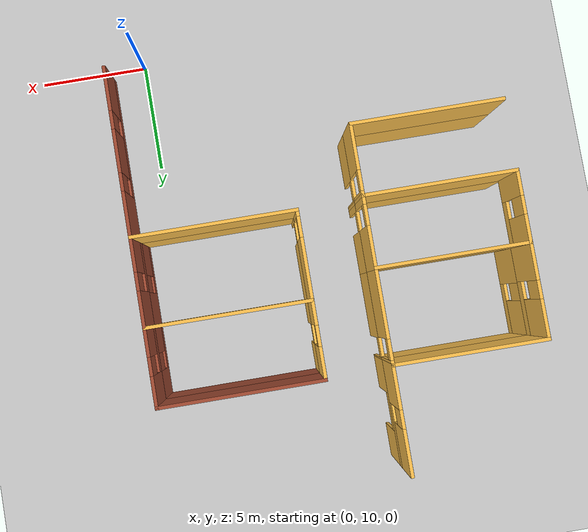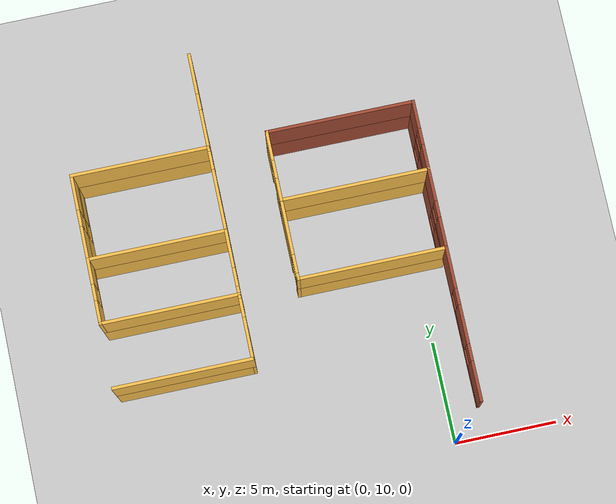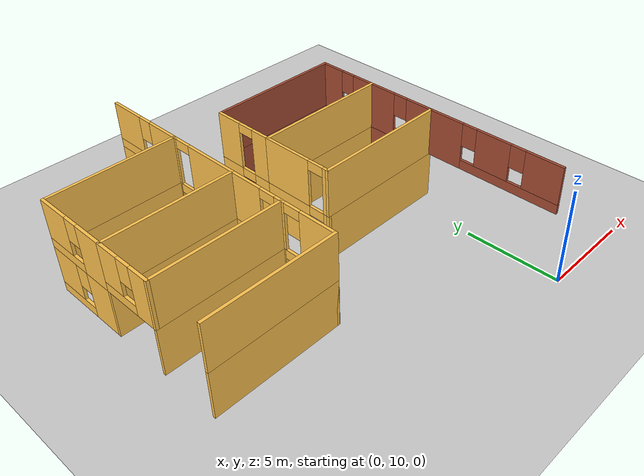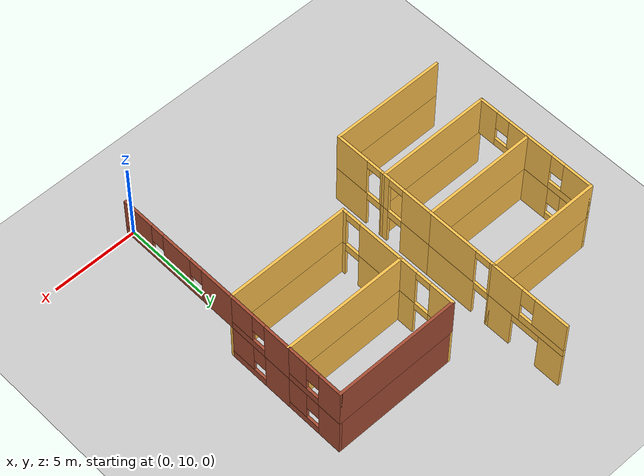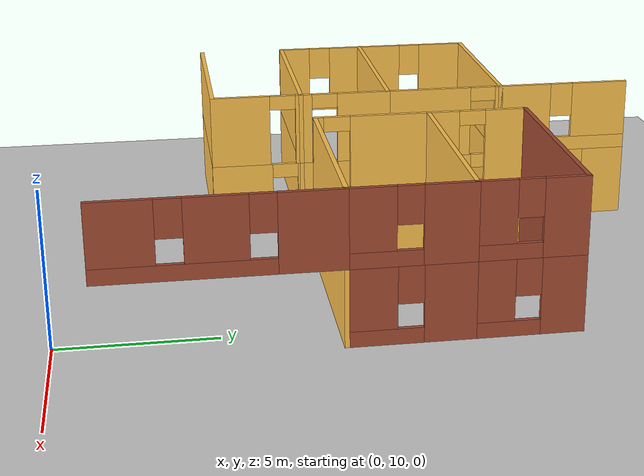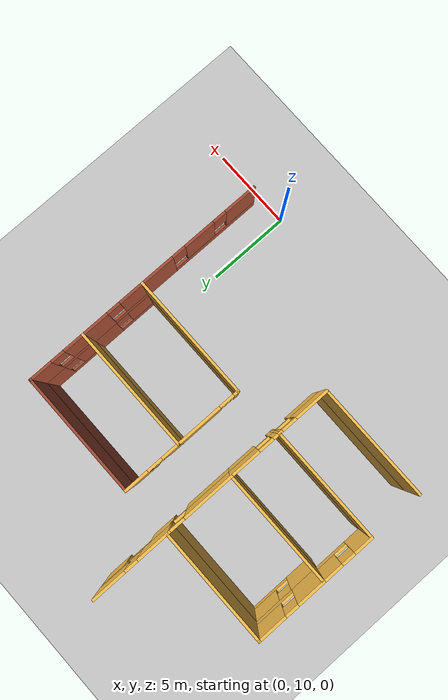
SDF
<sdf version="1.7">
 <world name="default">
  <model name="ground_plane">
   <static>1</static>
   <link name="link">
    <collision name="collision">
     <geometry><plane><normal>0 0 1</normal><size>100 100</size></plane></geometry>
     <surface>
      <contact><collide_bitmask>65535</collide_bitmask></contact>
      <friction><ode><mu>100</mu><mu2>50</mu2></ode></friction>
     </surface>
    </collision>
    <visual name="visual">
     <cast_shadows>0</cast_shadows>
     <geometry><plane><normal>0 0 1</normal><size>100 100</size></plane></geometry>
     <material>
      <script><uri>file://media/materials/scripts/gazebo.material</uri><name>Gazebo/Grey</name></script>
     </material>
    </visual>
   </link>
  </model>
  <model name="DepartmentBuilding">
   <pose>-25.6559 18.8293 0 0 -0 0</pose>
   <link name="Wall_188">
    <collision name="Wall_188_Collision">
     <geometry><box><size>7.25 0.15 2.5</size></box></geometry>
     <pose>0 0 1.25 0 -0 0</pose>
    </collision>
    <visual name="Wall_188_Visual">
     <pose>0 0 1.25 0 -0 0</pose>
     <geometry><box><size>7.25 0.15 2.5</size></box></geometry>
     <material>
      <script><uri>file://media/materials/scripts/gazebo.material</uri><name>Gazebo/Grey</name></script>
      <ambient>1 0.764706 0.305882 1</ambient>
     </material>
     <meta><layer>0</layer></meta>
    </visual>
    <pose>23.3194 -0.169637 0 0 -0 0</pose>
   </link>
   <link name="Wall_197">
    <collision name="Wall_197_Collision">
     <geometry><box><size>6.75 0.15 2.5</size></box></geometry>
     <pose>0 0 1.25 0 -0 0</pose>
    </collision>
    <visual name="Wall_197_Visual">
     <pose>0 0 1.25 0 -0 0</pose>
     <geometry><box><size>6.75 0.15 2.5</size></box></geometry>
     <material>
      <script><uri>file://media/materials/scripts/gazebo.material</uri><name>Gazebo/Grey</name></script>
      <ambient>1 0.764706 0.305882 1</ambient>
     </material>
     <meta><layer>0</layer></meta>
    </visual>
    <pose>13.6194 -3.41094 0 0 -0 0</pose>
   </link>
   <link name="Wall_200">
    <pose>16.9194 -1.86094 0 0 -0 1.5708</pose>
    <visual name="Wall_200_Visual_0">
     <pose>-0.559126 0 1.25 0 -0 0</pose>
     <geometry><box><size>2.13175 0.15 2.5</size></box></geometry>
     <material>
      <script><uri>file://media/materials/scripts/gazebo.material</uri><name>Gazebo/Grey</name></script>
      <ambient>1 0.764706 0.305882 1</ambient>
     </material>
     <meta><layer>0</layer></meta>
    </visual>
    <collision name="Wall_200_Collision_0">
     <geometry><box><size>2.13175 0.15 2.5</size></box></geometry>
     <pose>-0.559126 0 1.25 0 -0 0</pose>
    </collision>
    <visual name="Wall_200_Visual_1">
     <pose>1.51587 0 1.25 0 -0 0</pose>
     <geometry><box><size>0.218251 0.15 2.5</size></box></geometry>
     <material>
      <script><uri>file://media/materials/scripts/gazebo.material</uri><name>Gazebo/Grey</name></script>
      <ambient>1 0.764706 0.305882 1</ambient>
     </material>
     <meta><layer>0</layer></meta>
    </visual>
    <collision name="Wall_200_Collision_1">
     <geometry><box><size>0.218251 0.15 2.5</size></box></geometry>
     <pose>1.51587 0 1.25 0 -0 0</pose>
    </collision>
    <visual name="Wall_200_Visual_2">
     <pose>0.956749 0 2.25 0 -0 0</pose>
     <geometry><box><size>0.9 0.15 0.5</size></box></geometry>
     <material>
      <script><uri>file://media/materials/scripts/gazebo.material</uri><name>Gazebo/Grey</name></script>
      <ambient>1 0.764706 0.305882 1</ambient>
     </material>
     <meta><layer>0</layer></meta>
    </visual>
    <collision name="Wall_200_Collision_2">
     <geometry><box><size>0.9 0.15 0.5</size></box></geometry>
     <pose>0.956749 0 2.25 0 -0 0</pose>
    </collision>
   </link>
   <link name="Wall_201">
    <collision name="Wall_201_Collision">
     <geometry><box><size>6.75 0.15 2.5</size></box></geometry>
     <pose>0 0 1.25 0 -0 0</pose>
    </collision>
    <visual name="Wall_201_Visual">
     <pose>0 0 1.25 0 -0 0</pose>
     <geometry><box><size>6.75 0.15 2.5</size></box></geometry>
     <material>
      <script><uri>file://media/materials/scripts/gazebo.material</uri><name>Gazebo/Grey</name></script>
      <ambient>1 0.764706 0.305882 1</ambient>
     </material>
     <meta><layer>0</layer></meta>
    </visual>
    <pose>13.6194 -0.310941 0 0 -0 3.14159</pose>
   </link>
   <link name="Wall_205">
    <collision name="Wall_205_Collision">
     <geometry><box><size>6.75 0.15 2.5</size></box></geometry>
     <pose>0 0 1.25 0 -0 0</pose>
    </collision>
    <visual name="Wall_205_Visual">
     <pose>0 0 1.25 0 -0 0</pose>
     <geometry><box><size>6.75 0.15 2.5</size></box></geometry>
     <material>
      <script><uri>file://media/materials/scripts/gazebo.material</uri><name>Gazebo/Grey</name></script>
      <ambient>1 0.764706 0.305882 1</ambient>
     </material>
     <meta><layer>0</layer></meta>
    </visual>
    <pose>13.6194 2.78906 0 0 -0 0</pose>
   </link>
   <link name="Wall_206">
    <pose>16.9194 1.23906 0 0 -0 -1.5708</pose>
    <visual name="Wall_206_Visual_0">
     <pose>-0.68297 0 1.25 0 -0 0</pose>
     <geometry><box><size>1.88406 0.15 2.5</size></box></geometry>
     <material>
      <script><uri>file://media/materials/scripts/gazebo.material</uri><name>Gazebo/Grey</name></script>
      <ambient>1 0.764706 0.305882 1</ambient>
     </material>
     <meta><layer>0</layer></meta>
    </visual>
    <collision name="Wall_206_Collision_0">
     <geometry><box><size>1.88406 0.15 2.5</size></box></geometry>
     <pose>-0.68297 0 1.25 0 -0 0</pose>
    </collision>
    <visual name="Wall_206_Visual_1">
     <pose>1.39203 0 1.25 0 -0 0</pose>
     <geometry><box><size>0.46594 0.15 2.5</size></box></geometry>
     <material>
      <script><uri>file://media/materials/scripts/gazebo.material</uri><name>Gazebo/Grey</name></script>
      <ambient>1 0.764706 0.305882 1</ambient>
     </material>
     <meta><layer>0</layer></meta>
    </visual>
    <collision name="Wall_206_Collision_1">
     <geometry><box><size>0.46594 0.15 2.5</size></box></geometry>
     <pose>1.39203 0 1.25 0 -0 0</pose>
    </collision>
    <visual name="Wall_206_Visual_2">
     <pose>0.70906 0 2.25 0 -0 0</pose>
     <geometry><box><size>0.9 0.15 0.5</size></box></geometry>
     <material>
      <script><uri>file://media/materials/scripts/gazebo.material</uri><name>Gazebo/Grey</name></script>
      <ambient>1 0.764706 0.305882 1</ambient>
     </material>
     <meta><layer>0</layer></meta>
    </visual>
    <collision name="Wall_206_Collision_2">
     <geometry><box><size>0.9 0.15 0.5</size></box></geometry>
     <pose>0.70906 0 2.25 0 -0 0</pose>
    </collision>
   </link>
   <link name="Wall_208">
    <pose>10.3194 4.83906 0 0 -0 1.5708</pose>
    <visual name="Wall_208_Visual_0">
     <pose>-1.26015 0 1.25 0 -0 0</pose>
     <geometry><box><size>1.72969 0.15 2.5</size></box></geometry>
     <material>
      <script><uri>file://media/materials/scripts/gazebo.material</uri><name>Gazebo/Grey</name></script>
      <ambient>1 0.764706 0.305882 1</ambient>
     </material>
     <meta><layer>0</layer></meta>
    </visual>
    <collision name="Wall_208_Collision_0">
     <geometry><box><size>1.72969 0.15 2.5</size></box></geometry>
     <pose>-1.26015 0 1.25 0 -0 0</pose>
    </collision>
    <visual name="Wall_208_Visual_1">
     <pose>0.864847 0 0.25 0 -0 0</pose>
     <geometry><box><size>2.52031 0.15 0.5</size></box></geometry>
     <material>
      <script><uri>file://media/materials/scripts/gazebo.material</uri><name>Gazebo/Grey</name></script>
      <ambient>1 0.764706 0.305882 1</ambient>
     </material>
     <meta><layer>0</layer></meta>
    </visual>
    <collision name="Wall_208_Collision_1">
     <geometry><box><size>2.52031 0.15 0.5</size></box></geometry>
     <pose>0.864847 0 0.25 0 -0 0</pose>
    </collision>
    <visual name="Wall_208_Visual_2">
     <pose>1.26485 0 1.5 0 -0 0</pose>
     <geometry><box><size>1.72031 0.15 2</size></box></geometry>
     <material>
      <script><uri>file://media/materials/scripts/gazebo.material</uri><name>Gazebo/Grey</name></script>
      <ambient>1 0.764706 0.305882 1</ambient>
     </material>
     <meta><layer>0</layer></meta>
    </visual>
    <collision name="Wall_208_Collision_2">
     <geometry><box><size>1.72031 0.15 2</size></box></geometry>
     <pose>1.26485 0 1.5 0 -0 0</pose>
    </collision>
    <visual name="Wall_208_Visual_3">
     <pose>0.004694 0 1.9 0 -0 0</pose>
     <geometry><box><size>0.8 0.15 1.2</size></box></geometry>
     <material>
      <script><uri>file://media/materials/scripts/gazebo.material</uri><name>Gazebo/Grey</name></script>
      <ambient>1 0.764706 0.305882 1</ambient>
     </material>
     <meta><layer>0</layer></meta>
    </visual>
    <collision name="Wall_208_Collision_3">
     <geometry><box><size>0.8 0.15 1.2</size></box></geometry>
     <pose>0.004694 0 1.9 0 -0 0</pose>
    </collision>
   </link>
   <link name="Wall_209">
    <collision name="Wall_209_Collision">
     <geometry><box><size>6.75 0.15 2.5</size></box></geometry>
     <pose>0 0 1.25 0 -0 0</pose>
    </collision>
    <visual name="Wall_209_Visual">
     <pose>0 0 1.25 0 -0 0</pose>
     <geometry><box><size>6.75 0.15 2.5</size></box></geometry>
     <material>
      <script><uri>file://media/materials/scripts/gazebo.material</uri><name>Gazebo/Grey</name></script>
      <ambient>1 0.764706 0.305882 1</ambient>
     </material>
     <meta><layer>0</layer></meta>
    </visual>
    <pose>13.6194 6.88906 0 0 -0 0</pose>
   </link>
   <link name="Wall_210">
    <pose>16.9194 4.83906 0 0 -0 -1.5708</pose>
    <visual name="Wall_210_Visual_0">
     <pose>-2.01632 0 1.25 0 -0 0</pose>
     <geometry><box><size>0.217356 0.15 2.5</size></box></geometry>
     <material>
      <script><uri>file://media/materials/scripts/gazebo.material</uri><name>Gazebo/Grey</name></script>
      <ambient>1 0.764706 0.305882 1</ambient>
     </material>
     <meta><layer>0</layer></meta>
    </visual>
    <collision name="Wall_210_Collision_0">
     <geometry><box><size>0.217356 0.15 2.5</size></box></geometry>
     <pose>-2.01632 0 1.25 0 -0 0</pose>
    </collision>
    <visual name="Wall_210_Visual_1">
     <pose>0.558678 0 1.25 0 -0 0</pose>
     <geometry><box><size>3.13264 0.15 2.5</size></box></geometry>
     <material>
      <script><uri>file://media/materials/scripts/gazebo.material</uri><name>Gazebo/Grey</name></script>
      <ambient>1 0.764706 0.305882 1</ambient>
     </material>
     <meta><layer>0</layer></meta>
    </visual>
    <collision name="Wall_210_Collision_1">
     <geometry><box><size>3.13264 0.15 2.5</size></box></geometry>
     <pose>0.558678 0 1.25 0 -0 0</pose>
    </collision>
    <visual name="Wall_210_Visual_2">
     <pose>-1.45764 0 2.25 0 -0 0</pose>
     <geometry><box><size>0.9 0.15 0.5</size></box></geometry>
     <material>
      <script><uri>file://media/materials/scripts/gazebo.material</uri><name>Gazebo/Grey</name></script>
      <ambient>1 0.764706 0.305882 1</ambient>
     </material>
     <meta><layer>0</layer></meta>
    </visual>
    <collision name="Wall_210_Collision_2">
     <geometry><box><size>0.9 0.15 0.5</size></box></geometry>
     <pose>-1.45764 0 2.25 0 -0 0</pose>
    </collision>
   </link>
   <link name="Wall_212">
    <pose>19.7694 1.75536 0 0 -0 1.5708</pose>
    <visual name="Wall_212_Visual_0">
     <pose>-1.82685 0 1.25 0 -0 0</pose>
     <geometry><box><size>0.346307 0.15 2.5</size></box></geometry>
     <material>
      <script><uri>file://media/materials/scripts/gazebo.material</uri><name>Gazebo/Grey</name></script>
      <ambient>1 0.764706 0.305882 1</ambient>
     </material>
     <meta><layer>0</layer></meta>
    </visual>
    <collision name="Wall_212_Collision_0">
     <geometry><box><size>0.346307 0.15 2.5</size></box></geometry>
     <pose>-1.82685 0 1.25 0 -0 0</pose>
    </collision>
    <visual name="Wall_212_Visual_1">
     <pose>0.623153 0 1.25 0 -0 0</pose>
     <geometry><box><size>2.75369 0.15 2.5</size></box></geometry>
     <material>
      <script><uri>file://media/materials/scripts/gazebo.material</uri><name>Gazebo/Grey</name></script>
      <ambient>1 0.764706 0.305882 1</ambient>
     </material>
     <meta><layer>0</layer></meta>
    </visual>
    <collision name="Wall_212_Collision_1">
     <geometry><box><size>2.75369 0.15 2.5</size></box></geometry>
     <pose>0.623153 0 1.25 0 -0 0</pose>
    </collision>
    <visual name="Wall_212_Visual_2">
     <pose>-1.20369 0 2.25 0 -0 0</pose>
     <geometry><box><size>0.9 0.15 0.5</size></box></geometry>
     <material>
      <script><uri>file://media/materials/scripts/gazebo.material</uri><name>Gazebo/Grey</name></script>
      <ambient>1 0.764706 0.305882 1</ambient>
     </material>
     <meta><layer>0</layer></meta>
    </visual>
    <collision name="Wall_212_Collision_2">
     <geometry><box><size>0.9 0.15 0.5</size></box></geometry>
     <pose>-1.20369 0 2.25 0 -0 0</pose>
    </collision>
   </link>
   <link name="Wall_213">
    <collision name="Wall_213_Collision">
     <geometry><box><size>7.25 0.15 2.5</size></box></geometry>
     <pose>0 0 1.25 0 -0 0</pose>
    </collision>
    <visual name="Wall_213_Visual">
     <pose>0 0 1.25 0 -0 0</pose>
     <geometry><box><size>7.25 0.15 2.5</size></box></geometry>
     <material>
      <script><uri>file://media/materials/scripts/gazebo.material</uri><name>Gazebo/Grey</name></script>
      <ambient>1 0.764706 0.305882 1</ambient>
     </material>
     <meta><layer>0</layer></meta>
    </visual>
    <pose>23.3194 3.68036 0 0 -0 0</pose>
   </link>
   <link name="Wall_214">
    <pose>26.8694 1.75536 0 0 -0 -1.5708</pose>
    <visual name="Wall_214_Visual_0">
     <pose>-1.19764 0 1.25 0 -0 0</pose>
     <geometry><box><size>1.60472 0.15 2.5</size></box></geometry>
     <material>
      <script><uri>file://media/materials/scripts/gazebo.material</uri><name>Gazebo/Bricks</name></script>
      <ambient>1 1 1 1</ambient>
     </material>
     <meta><layer>0</layer></meta>
    </visual>
    <collision name="Wall_214_Collision_0">
     <geometry><box><size>1.60472 0.15 2.5</size></box></geometry>
     <pose>-1.19764 0 1.25 0 -0 0</pose>
    </collision>
    <visual name="Wall_214_Visual_1">
     <pose>0.802362 0 0.25 0 -0 0</pose>
     <geometry><box><size>2.39527 0.15 0.5</size></box></geometry>
     <material>
      <script><uri>file://media/materials/scripts/gazebo.material</uri><name>Gazebo/Bricks</name></script>
      <ambient>1 1 1 1</ambient>
     </material>
     <meta><layer>0</layer></meta>
    </visual>
    <collision name="Wall_214_Collision_1">
     <geometry><box><size>2.39527 0.15 0.5</size></box></geometry>
     <pose>0.802362 0 0.25 0 -0 0</pose>
    </collision>
    <visual name="Wall_214_Visual_2">
     <pose>1.20236 0 1.5 0 -0 0</pose>
     <geometry><box><size>1.59527 0.15 2</size></box></geometry>
     <material>
      <script><uri>file://media/materials/scripts/gazebo.material</uri><name>Gazebo/Bricks</name></script>
      <ambient>1 1 1 1</ambient>
     </material>
     <meta><layer>0</layer></meta>
    </visual>
    <collision name="Wall_214_Collision_2">
     <geometry><box><size>1.59527 0.15 2</size></box></geometry>
     <pose>1.20236 0 1.5 0 -0 0</pose>
    </collision>
    <visual name="Wall_214_Visual_3">
     <pose>0.004725 0 1.9 0 -0 0</pose>
     <geometry><box><size>0.8 0.15 1.2</size></box></geometry>
     <material>
      <script><uri>file://media/materials/scripts/gazebo.material</uri><name>Gazebo/Bricks</name></script>
      <ambient>1 1 1 1</ambient>
     </material>
     <meta><layer>0</layer></meta>
    </visual>
    <collision name="Wall_214_Collision_3">
     <geometry><box><size>0.8 0.15 1.2</size></box></geometry>
     <pose>0.004725 0 1.9 0 -0 0</pose>
    </collision>
   </link>
   <link name="Wall_216">
    <pose>19.7694 5.35536 0 0 -0 1.5708</pose>
    <visual name="Wall_216_Visual_0">
     <pose>-1.18709 0 1.25 0 -0 0</pose>
     <geometry><box><size>1.12581 0.15 2.5</size></box></geometry>
     <material>
      <script><uri>file://media/materials/scripts/gazebo.material</uri><name>Gazebo/Grey</name></script>
      <ambient>1 0.764706 0.305882 1</ambient>
     </material>
     <meta><layer>0</layer></meta>
    </visual>
    <collision name="Wall_216_Collision_0">
     <geometry><box><size>1.12581 0.15 2.5</size></box></geometry>
     <pose>-1.18709 0 1.25 0 -0 0</pose>
    </collision>
    <visual name="Wall_216_Visual_1">
     <pose>1.01291 0 1.25 0 -0 0</pose>
     <geometry><box><size>1.47419 0.15 2.5</size></box></geometry>
     <material>
      <script><uri>file://media/materials/scripts/gazebo.material</uri><name>Gazebo/Grey</name></script>
      <ambient>1 0.764706 0.305882 1</ambient>
     </material>
     <meta><layer>0</layer></meta>
    </visual>
    <collision name="Wall_216_Collision_1">
     <geometry><box><size>1.47419 0.15 2.5</size></box></geometry>
     <pose>1.01291 0 1.25 0 -0 0</pose>
    </collision>
    <visual name="Wall_216_Visual_2">
     <pose>-0.174188 0 2.25 0 -0 0</pose>
     <geometry><box><size>0.9 0.15 0.5</size></box></geometry>
     <material>
      <script><uri>file://media/materials/scripts/gazebo.material</uri><name>Gazebo/Grey</name></script>
      <ambient>1 0.764706 0.305882 1</ambient>
     </material>
     <meta><layer>0</layer></meta>
    </visual>
    <collision name="Wall_216_Collision_2">
     <geometry><box><size>0.9 0.15 0.5</size></box></geometry>
     <pose>-0.174188 0 2.25 0 -0 0</pose>
    </collision>
   </link>
   <link name="Wall_217">
    <collision name="Wall_217_Collision">
     <geometry><box><size>7.25 0.15 2.5</size></box></geometry>
     <pose>0 0 1.25 0 -0 0</pose>
    </collision>
    <visual name="Wall_217_Visual">
     <pose>0 0 1.25 0 -0 0</pose>
     <geometry><box><size>7.25 0.15 2.5</size></box></geometry>
     <material>
      <script><uri>file://media/materials/scripts/gazebo.material</uri><name>Gazebo/Bricks</name></script>
      <ambient>1 1 1 1</ambient>
     </material>
     <meta><layer>0</layer></meta>
    </visual>
    <pose>23.3194 7.03036 0 0 -0 0</pose>
   </link>
   <link name="Wall_218">
    <pose>26.8694 5.35536 0 0 -0 -1.5708</pose>
    <visual name="Wall_218_Visual_0">
     <pose>-1.0556 0 1.25 0 -0 0</pose>
     <geometry><box><size>1.38881 0.15 2.5</size></box></geometry>
     <material>
      <script><uri>file://media/materials/scripts/gazebo.material</uri><name>Gazebo/Bricks</name></script>
      <ambient>1 1 1 1</ambient>
     </material>
     <meta><layer>0</layer></meta>
    </visual>
    <collision name="Wall_218_Collision_0">
     <geometry><box><size>1.38881 0.15 2.5</size></box></geometry>
     <pose>-1.0556 0 1.25 0 -0 0</pose>
    </collision>
    <visual name="Wall_218_Visual_1">
     <pose>0.694403 0 0.25 0 -0 0</pose>
     <geometry><box><size>2.11119 0.15 0.5</size></box></geometry>
     <material>
      <script><uri>file://media/materials/scripts/gazebo.material</uri><name>Gazebo/Bricks</name></script>
      <ambient>1 1 1 1</ambient>
     </material>
     <meta><layer>0</layer></meta>
    </visual>
    <collision name="Wall_218_Collision_1">
     <geometry><box><size>2.11119 0.15 0.5</size></box></geometry>
     <pose>0.694403 0 0.25 0 -0 0</pose>
    </collision>
    <visual name="Wall_218_Visual_2">
     <pose>1.0944 0 1.5 0 -0 0</pose>
     <geometry><box><size>1.31119 0.15 2</size></box></geometry>
     <material>
      <script><uri>file://media/materials/scripts/gazebo.material</uri><name>Gazebo/Bricks</name></script>
      <ambient>1 1 1 1</ambient>
     </material>
     <meta><layer>0</layer></meta>
    </visual>
    <collision name="Wall_218_Collision_2">
     <geometry><box><size>1.31119 0.15 2</size></box></geometry>
     <pose>1.0944 0 1.5 0 -0 0</pose>
    </collision>
    <visual name="Wall_218_Visual_3">
     <pose>0.038806 0 1.9 0 -0 0</pose>
     <geometry><box><size>0.8 0.15 1.2</size></box></geometry>
     <material>
      <script><uri>file://media/materials/scripts/gazebo.material</uri><name>Gazebo/Bricks</name></script>
      <ambient>1 1 1 1</ambient>
     </material>
     <meta><layer>0</layer></meta>
    </visual>
    <collision name="Wall_218_Collision_3">
     <geometry><box><size>0.8 0.15 1.2</size></box></geometry>
     <pose>0.038806 0 1.9 0 -0 0</pose>
    </collision>
   </link>
   <link name="Wall_220">
    <pose>16.9194 9.18906 0 0 -0 1.5708</pose>
    <visual name="Wall_220_Visual_0">
     <pose>-1.61576 0 1.25 0 -0 0</pose>
     <geometry><box><size>1.51849 0.15 2.5</size></box></geometry>
     <material>
      <script><uri>file://media/materials/scripts/gazebo.material</uri><name>Gazebo/Grey</name></script>
      <ambient>1 0.764706 0.305882 1</ambient>
     </material>
     <meta><layer>0</layer></meta>
    </visual>
    <collision name="Wall_220_Collision_0">
     <geometry><box><size>1.51849 0.15 2.5</size></box></geometry>
     <pose>-1.61576 0 1.25 0 -0 0</pose>
    </collision>
    <visual name="Wall_220_Visual_1">
     <pose>1.60924 0 1.25 0 -0 0</pose>
     <geometry><box><size>1.53151 0.15 2.5</size></box></geometry>
     <material>
      <script><uri>file://media/materials/scripts/gazebo.material</uri><name>Gazebo/Grey</name></script>
      <ambient>1 0.764706 0.305882 1</ambient>
     </material>
     <meta><layer>0</layer></meta>
    </visual>
    <collision name="Wall_220_Collision_1">
     <geometry><box><size>1.53151 0.15 2.5</size></box></geometry>
     <pose>1.60924 0 1.25 0 -0 0</pose>
    </collision>
    <visual name="Wall_220_Visual_2">
     <pose>-0.006513 0 2.25 0 -0 0</pose>
     <geometry><box><size>1.7 0.15 0.5</size></box></geometry>
     <material>
      <script><uri>file://media/materials/scripts/gazebo.material</uri><name>Gazebo/Grey</name></script>
      <ambient>1 0.764706 0.305882 1</ambient>
     </material>
     <meta><layer>0</layer></meta>
    </visual>
    <collision name="Wall_220_Collision_2">
     <geometry><box><size>1.7 0.15 0.5</size></box></geometry>
     <pose>-0.006513 0 2.25 0 -0 0</pose>
    </collision>
   </link>
   <link name="Wall_878">
    <collision name="Wall_878_Collision">
     <geometry><box><size>7.25 0.15 2.5</size></box></geometry>
     <pose>0 0 1.25 0 -0 0</pose>
    </collision>
    <visual name="Wall_878_Visual">
     <pose>0 0 1.25 0 -0 0</pose>
     <geometry><box><size>7.25 0.15 2.5</size></box></geometry>
     <material>
      <script><uri>file://media/materials/scripts/gazebo.material</uri><name>Gazebo/Grey</name></script>
      <ambient>1 0.764706 0.305882 1</ambient>
     </material>
     <meta><layer>1</layer></meta>
    </visual>
    <pose>23.3194 -0.169637 2.5 0 -0 0</pose>
   </link>
   <link name="Wall_879">
    <pose>26.8694 -3.84464 2.5 0 -0 -1.5708</pose>
    <visual name="Wall_879_Visual_0">
     <pose>-2.72406 0 1.25 0 -0 0</pose>
     <geometry><box><size>2.05188 0.15 2.5</size></box></geometry>
     <material>
      <script><uri>file://media/materials/scripts/gazebo.material</uri><name>Gazebo/Bricks</name></script>
      <ambient>1 1 1 1</ambient>
     </material>
     <meta><layer>1</layer></meta>
    </visual>
    <collision name="Wall_879_Collision_0">
     <geometry><box><size>2.05188 0.15 2.5</size></box></geometry>
     <pose>-2.72406 0 1.25 0 -0 0</pose>
    </collision>
    <visual name="Wall_879_Visual_1">
     <pose>1.02594 0 0.25 0 -0 0</pose>
     <geometry><box><size>5.44812 0.15 0.5</size></box></geometry>
     <material>
      <script><uri>file://media/materials/scripts/gazebo.material</uri><name>Gazebo/Bricks</name></script>
      <ambient>1 1 1 1</ambient>
     </material>
     <meta><layer>1</layer></meta>
    </visual>
    <collision name="Wall_879_Collision_1">
     <geometry><box><size>5.44812 0.15 0.5</size></box></geometry>
     <pose>1.02594 0 0.25 0 -0 0</pose>
    </collision>
    <visual name="Wall_879_Visual_2">
     <pose>0.045189 0 1.5 0 -0 0</pose>
     <geometry><box><size>1.88662 0.15 2</size></box></geometry>
     <material>
      <script><uri>file://media/materials/scripts/gazebo.material</uri><name>Gazebo/Bricks</name></script>
      <ambient>1 1 1 1</ambient>
     </material>
     <meta><layer>1</layer></meta>
    </visual>
    <collision name="Wall_879_Collision_2">
     <geometry><box><size>1.88662 0.15 2</size></box></geometry>
     <pose>0.045189 0 1.5 0 -0 0</pose>
    </collision>
    <visual name="Wall_879_Visual_3">
     <pose>2.76925 0 1.5 0 -0 0</pose>
     <geometry><box><size>1.9615 0.15 2</size></box></geometry>
     <material>
      <script><uri>file://media/materials/scripts/gazebo.material</uri><name>Gazebo/Bricks</name></script>
      <ambient>1 1 1 1</ambient>
     </material>
     <meta><layer>1</layer></meta>
    </visual>
    <collision name="Wall_879_Collision_3">
     <geometry><box><size>1.9615 0.15 2</size></box></geometry>
     <pose>2.76925 0 1.5 0 -0 0</pose>
    </collision>
    <visual name="Wall_879_Visual_4">
     <pose>-1.29812 0 1.9 0 -0 0</pose>
     <geometry><box><size>0.8 0.15 1.2</size></box></geometry>
     <material>
      <script><uri>file://media/materials/scripts/gazebo.material</uri><name>Gazebo/Bricks</name></script>
      <ambient>1 1 1 1</ambient>
     </material>
     <meta><layer>1</layer></meta>
    </visual>
    <collision name="Wall_879_Collision_4">
     <geometry><box><size>0.8 0.15 1.2</size></box></geometry>
     <pose>-1.29812 0 1.9 0 -0 0</pose>
    </collision>
    <visual name="Wall_879_Visual_5">
     <pose>1.3885 0 1.9 0 -0 0</pose>
     <geometry><box><size>0.8 0.15 1.2</size></box></geometry>
     <material>
      <script><uri>file://media/materials/scripts/gazebo.material</uri><name>Gazebo/Bricks</name></script>
      <ambient>1 1 1 1</ambient>
     </material>
     <meta><layer>1</layer></meta>
    </visual>
    <collision name="Wall_879_Collision_5">
     <geometry><box><size>0.8 0.15 1.2</size></box></geometry>
     <pose>1.3885 0 1.9 0 -0 0</pose>
    </collision>
   </link>
   <link name="Wall_884">
    <collision name="Wall_884_Collision">
     <geometry><box><size>6.75 0.15 2.5</size></box></geometry>
     <pose>0 0 1.25 0 -0 0</pose>
    </collision>
    <visual name="Wall_884_Visual">
     <pose>0 0 1.25 0 -0 0</pose>
     <geometry><box><size>6.75 0.15 2.5</size></box></geometry>
     <material>
      <script><uri>file://media/materials/scripts/gazebo.material</uri><name>Gazebo/Grey</name></script>
      <ambient>1 0.764706 0.305882 1</ambient>
     </material>
     <meta><layer>1</layer></meta>
    </visual>
    <pose>13.6194 -3.41094 2.5 0 -0 0</pose>
   </link>
   <link name="Wall_886">
    <pose>16.9194 -1.86094 2.5 0 -0 1.5708</pose>
    <visual name="Wall_886_Visual_0">
     <pose>-0.587944 0 1.25 0 -0 0</pose>
     <geometry><box><size>2.07411 0.15 2.5</size></box></geometry>
     <material>
      <script><uri>file://media/materials/scripts/gazebo.material</uri><name>Gazebo/Grey</name></script>
      <ambient>1 0.764706 0.305882 1</ambient>
     </material>
     <meta><layer>1</layer></meta>
    </visual>
    <collision name="Wall_886_Collision_0">
     <geometry><box><size>2.07411 0.15 2.5</size></box></geometry>
     <pose>-0.587944 0 1.25 0 -0 0</pose>
    </collision>
    <visual name="Wall_886_Visual_1">
     <pose>1.48706 0 1.25 0 -0 0</pose>
     <geometry><box><size>0.275887 0.15 2.5</size></box></geometry>
     <material>
      <script><uri>file://media/materials/scripts/gazebo.material</uri><name>Gazebo/Grey</name></script>
      <ambient>1 0.764706 0.305882 1</ambient>
     </material>
     <meta><layer>1</layer></meta>
    </visual>
    <collision name="Wall_886_Collision_1">
     <geometry><box><size>0.275887 0.15 2.5</size></box></geometry>
     <pose>1.48706 0 1.25 0 -0 0</pose>
    </collision>
    <visual name="Wall_886_Visual_2">
     <pose>0.899113 0 2.25 0 -0 0</pose>
     <geometry><box><size>0.9 0.15 0.5</size></box></geometry>
     <material>
      <script><uri>file://media/materials/scripts/gazebo.material</uri><name>Gazebo/Grey</name></script>
      <ambient>1 0.764706 0.305882 1</ambient>
     </material>
     <meta><layer>1</layer></meta>
    </visual>
    <collision name="Wall_886_Collision_2">
     <geometry><box><size>0.9 0.15 0.5</size></box></geometry>
     <pose>0.899113 0 2.25 0 -0 0</pose>
    </collision>
   </link>
   <link name="Wall_887">
    <collision name="Wall_887_Collision">
     <geometry><box><size>6.75 0.15 2.5</size></box></geometry>
     <pose>0 0 1.25 0 -0 0</pose>
    </collision>
    <visual name="Wall_887_Visual">
     <pose>0 0 1.25 0 -0 0</pose>
     <geometry><box><size>6.75 0.15 2.5</size></box></geometry>
     <material>
      <script><uri>file://media/materials/scripts/gazebo.material</uri><name>Gazebo/Grey</name></script>
      <ambient>1 0.764706 0.305882 1</ambient>
     </material>
     <meta><layer>1</layer></meta>
    </visual>
    <pose>13.6194 -0.310941 2.5 0 -0 3.14159</pose>
   </link>
   <link name="Wall_889">
    <pose>10.3194 1.23906 2.5 0 -0 1.5708</pose>
    <visual name="Wall_889_Visual_0">
     <pose>-1.03638 0 1.25 0 -0 0</pose>
     <geometry><box><size>1.17723 0.15 2.5</size></box></geometry>
     <material>
      <script><uri>file://media/materials/scripts/gazebo.material</uri><name>Gazebo/Grey</name></script>
      <ambient>1 0.764706 0.305882 1</ambient>
     </material>
     <meta><layer>1</layer></meta>
    </visual>
    <collision name="Wall_889_Collision_0">
     <geometry><box><size>1.17723 0.15 2.5</size></box></geometry>
     <pose>-1.03638 0 1.25 0 -0 0</pose>
    </collision>
    <visual name="Wall_889_Visual_1">
     <pose>0.588616 0 0.25 0 -0 0</pose>
     <geometry><box><size>2.07277 0.15 0.5</size></box></geometry>
     <material>
      <script><uri>file://media/materials/scripts/gazebo.material</uri><name>Gazebo/Grey</name></script>
      <ambient>1 0.764706 0.305882 1</ambient>
     </material>
     <meta><layer>1</layer></meta>
    </visual>
    <collision name="Wall_889_Collision_1">
     <geometry><box><size>2.07277 0.15 0.5</size></box></geometry>
     <pose>0.588616 0 0.25 0 -0 0</pose>
    </collision>
    <visual name="Wall_889_Visual_2">
     <pose>0.988616 0 1.5 0 -0 0</pose>
     <geometry><box><size>1.27277 0.15 2</size></box></geometry>
     <material>
      <script><uri>file://media/materials/scripts/gazebo.material</uri><name>Gazebo/Grey</name></script>
      <ambient>1 0.764706 0.305882 1</ambient>
     </material>
     <meta><layer>1</layer></meta>
    </visual>
    <collision name="Wall_889_Collision_2">
     <geometry><box><size>1.27277 0.15 2</size></box></geometry>
     <pose>0.988616 0 1.5 0 -0 0</pose>
    </collision>
    <visual name="Wall_889_Visual_3">
     <pose>-0.047769 0 1.9 0 -0 0</pose>
     <geometry><box><size>0.8 0.15 1.2</size></box></geometry>
     <material>
      <script><uri>file://media/materials/scripts/gazebo.material</uri><name>Gazebo/Grey</name></script>
      <ambient>1 0.764706 0.305882 1</ambient>
     </material>
     <meta><layer>1</layer></meta>
    </visual>
    <collision name="Wall_889_Collision_3">
     <geometry><box><size>0.8 0.15 1.2</size></box></geometry>
     <pose>-0.047769 0 1.9 0 -0 0</pose>
    </collision>
   </link>
   <link name="Wall_890">
    <collision name="Wall_890_Collision">
     <geometry><box><size>6.75 0.15 2.5</size></box></geometry>
     <pose>0 0 1.25 0 -0 0</pose>
    </collision>
    <visual name="Wall_890_Visual">
     <pose>0 0 1.25 0 -0 0</pose>
     <geometry><box><size>6.75 0.15 2.5</size></box></geometry>
     <material>
      <script><uri>file://media/materials/scripts/gazebo.material</uri><name>Gazebo/Grey</name></script>
      <ambient>1 0.764706 0.305882 1</ambient>
     </material>
     <meta><layer>1</layer></meta>
    </visual>
    <pose>13.6194 2.78906 2.5 0 -0 0</pose>
   </link>
   <link name="Wall_891">
    <pose>16.9194 1.23906 2.5 0 -0 -1.5708</pose>
    <visual name="Wall_891_Visual_0">
     <pose>-0.681259 0 1.25 0 -0 0</pose>
     <geometry><box><size>1.88748 0.15 2.5</size></box></geometry>
     <material>
      <script><uri>file://media/materials/scripts/gazebo.material</uri><name>Gazebo/Grey</name></script>
      <ambient>1 0.764706 0.305882 1</ambient>
     </material>
     <meta><layer>1</layer></meta>
    </visual>
    <collision name="Wall_891_Collision_0">
     <geometry><box><size>1.88748 0.15 2.5</size></box></geometry>
     <pose>-0.681259 0 1.25 0 -0 0</pose>
    </collision>
    <visual name="Wall_891_Visual_1">
     <pose>1.39374 0 1.25 0 -0 0</pose>
     <geometry><box><size>0.462518 0.15 2.5</size></box></geometry>
     <material>
      <script><uri>file://media/materials/scripts/gazebo.material</uri><name>Gazebo/Grey</name></script>
      <ambient>1 0.764706 0.305882 1</ambient>
     </material>
     <meta><layer>1</layer></meta>
    </visual>
    <collision name="Wall_891_Collision_1">
     <geometry><box><size>0.462518 0.15 2.5</size></box></geometry>
     <pose>1.39374 0 1.25 0 -0 0</pose>
    </collision>
    <visual name="Wall_891_Visual_2">
     <pose>0.712482 0 2.25 0 -0 0</pose>
     <geometry><box><size>0.9 0.15 0.5</size></box></geometry>
     <material>
      <script><uri>file://media/materials/scripts/gazebo.material</uri><name>Gazebo/Grey</name></script>
      <ambient>1 0.764706 0.305882 1</ambient>
     </material>
     <meta><layer>1</layer></meta>
    </visual>
    <collision name="Wall_891_Collision_2">
     <geometry><box><size>0.9 0.15 0.5</size></box></geometry>
     <pose>0.712482 0 2.25 0 -0 0</pose>
    </collision>
   </link>
   <link name="Wall_892">
    <pose>10.3194 4.83906 2.5 0 -0 1.5708</pose>
    <visual name="Wall_892_Visual_0">
     <pose>-1.28156 0 1.25 0 -0 0</pose>
     <geometry><box><size>1.68688 0.15 2.5</size></box></geometry>
     <material>
      <script><uri>file://media/materials/scripts/gazebo.material</uri><name>Gazebo/Grey</name></script>
      <ambient>1 0.764706 0.305882 1</ambient>
     </material>
     <meta><layer>1</layer></meta>
    </visual>
    <collision name="Wall_892_Collision_0">
     <geometry><box><size>1.68688 0.15 2.5</size></box></geometry>
     <pose>-1.28156 0 1.25 0 -0 0</pose>
    </collision>
    <visual name="Wall_892_Visual_1">
     <pose>0.843439 0 0.25 0 -0 0</pose>
     <geometry><box><size>2.56312 0.15 0.5</size></box></geometry>
     <material>
      <script><uri>file://media/materials/scripts/gazebo.material</uri><name>Gazebo/Grey</name></script>
      <ambient>1 0.764706 0.305882 1</ambient>
     </material>
     <meta><layer>1</layer></meta>
    </visual>
    <collision name="Wall_892_Collision_1">
     <geometry><box><size>2.56312 0.15 0.5</size></box></geometry>
     <pose>0.843439 0 0.25 0 -0 0</pose>
    </collision>
    <visual name="Wall_892_Visual_2">
     <pose>1.24344 0 1.5 0 -0 0</pose>
     <geometry><box><size>1.76312 0.15 2</size></box></geometry>
     <material>
      <script><uri>file://media/materials/scripts/gazebo.material</uri><name>Gazebo/Grey</name></script>
      <ambient>1 0.764706 0.305882 1</ambient>
     </material>
     <meta><layer>1</layer></meta>
    </visual>
    <collision name="Wall_892_Collision_2">
     <geometry><box><size>1.76312 0.15 2</size></box></geometry>
     <pose>1.24344 0 1.5 0 -0 0</pose>
    </collision>
    <visual name="Wall_892_Visual_3">
     <pose>-0.038121 0 1.9 0 -0 0</pose>
     <geometry><box><size>0.8 0.15 1.2</size></box></geometry>
     <material>
      <script><uri>file://media/materials/scripts/gazebo.material</uri><name>Gazebo/Grey</name></script>
      <ambient>1 0.764706 0.305882 1</ambient>
     </material>
     <meta><layer>1</layer></meta>
    </visual>
    <collision name="Wall_892_Collision_3">
     <geometry><box><size>0.8 0.15 1.2</size></box></geometry>
     <pose>-0.038121 0 1.9 0 -0 0</pose>
    </collision>
   </link>
   <link name="Wall_893">
    <collision name="Wall_893_Collision">
     <geometry><box><size>6.75 0.15 2.5</size></box></geometry>
     <pose>0 0 1.25 0 -0 0</pose>
    </collision>
    <visual name="Wall_893_Visual">
     <pose>0 0 1.25 0 -0 0</pose>
     <geometry><box><size>6.75 0.15 2.5</size></box></geometry>
     <material>
      <script><uri>file://media/materials/scripts/gazebo.material</uri><name>Gazebo/Grey</name></script>
      <ambient>1 0.764706 0.305882 1</ambient>
     </material>
     <meta><layer>1</layer></meta>
    </visual>
    <pose>13.6194 6.88906 2.5 0 -0 0</pose>
   </link>
   <link name="Wall_894">
    <pose>16.9194 4.83906 2.5 0 -0 -1.5708</pose>
    <visual name="Wall_894_Visual_0">
     <pose>-1.98739 0 1.25 0 -0 0</pose>
     <geometry><box><size>0.275228 0.15 2.5</size></box></geometry>
     <material>
      <script><uri>file://media/materials/scripts/gazebo.material</uri><name>Gazebo/Grey</name></script>
      <ambient>1 0.764706 0.305882 1</ambient>
     </material>
     <meta><layer>1</layer></meta>
    </visual>
    <collision name="Wall_894_Collision_0">
     <geometry><box><size>0.275228 0.15 2.5</size></box></geometry>
     <pose>-1.98739 0 1.25 0 -0 0</pose>
    </collision>
    <visual name="Wall_894_Visual_1">
     <pose>0.587614 0 1.25 0 -0 0</pose>
     <geometry><box><size>3.07477 0.15 2.5</size></box></geometry>
     <material>
      <script><uri>file://media/materials/scripts/gazebo.material</uri><name>Gazebo/Grey</name></script>
      <ambient>1 0.764706 0.305882 1</ambient>
     </material>
     <meta><layer>1</layer></meta>
    </visual>
    <collision name="Wall_894_Collision_1">
     <geometry><box><size>3.07477 0.15 2.5</size></box></geometry>
     <pose>0.587614 0 1.25 0 -0 0</pose>
    </collision>
    <visual name="Wall_894_Visual_2">
     <pose>-1.39977 0 2.25 0 -0 0</pose>
     <geometry><box><size>0.9 0.15 0.5</size></box></geometry>
     <material>
      <script><uri>file://media/materials/scripts/gazebo.material</uri><name>Gazebo/Grey</name></script>
      <ambient>1 0.764706 0.305882 1</ambient>
     </material>
     <meta><layer>1</layer></meta>
    </visual>
    <collision name="Wall_894_Collision_2">
     <geometry><box><size>0.9 0.15 0.5</size></box></geometry>
     <pose>-1.39977 0 2.25 0 -0 0</pose>
    </collision>
   </link>
   <link name="Wall_895">
    <pose>19.7694 1.75536 2.5 0 -0 1.5708</pose>
    <visual name="Wall_895_Visual_0">
     <pose>-1.82441 0 1.25 0 -0 0</pose>
     <geometry><box><size>0.351172 0.15 2.5</size></box></geometry>
     <material>
      <script><uri>file://media/materials/scripts/gazebo.material</uri><name>Gazebo/Grey</name></script>
      <ambient>1 0.764706 0.305882 1</ambient>
     </material>
     <meta><layer>1</layer></meta>
    </visual>
    <collision name="Wall_895_Collision_0">
     <geometry><box><size>0.351172 0.15 2.5</size></box></geometry>
     <pose>-1.82441 0 1.25 0 -0 0</pose>
    </collision>
    <visual name="Wall_895_Visual_1">
     <pose>0.625586 0 1.25 0 -0 0</pose>
     <geometry><box><size>2.74883 0.15 2.5</size></box></geometry>
     <material>
      <script><uri>file://media/materials/scripts/gazebo.material</uri><name>Gazebo/Grey</name></script>
      <ambient>1 0.764706 0.305882 1</ambient>
     </material>
     <meta><layer>1</layer></meta>
    </visual>
    <collision name="Wall_895_Collision_1">
     <geometry><box><size>2.74883 0.15 2.5</size></box></geometry>
     <pose>0.625586 0 1.25 0 -0 0</pose>
    </collision>
    <visual name="Wall_895_Visual_2">
     <pose>-1.19883 0 2.25 0 -0 0</pose>
     <geometry><box><size>0.9 0.15 0.5</size></box></geometry>
     <material>
      <script><uri>file://media/materials/scripts/gazebo.material</uri><name>Gazebo/Grey</name></script>
      <ambient>1 0.764706 0.305882 1</ambient>
     </material>
     <meta><layer>1</layer></meta>
    </visual>
    <collision name="Wall_895_Collision_2">
     <geometry><box><size>0.9 0.15 0.5</size></box></geometry>
     <pose>-1.19883 0 2.25 0 -0 0</pose>
    </collision>
   </link>
   <link name="Wall_896">
    <collision name="Wall_896_Collision">
     <geometry><box><size>7.25 0.15 2.5</size></box></geometry>
     <pose>0 0 1.25 0 -0 0</pose>
    </collision>
    <visual name="Wall_896_Visual">
     <pose>0 0 1.25 0 -0 0</pose>
     <geometry><box><size>7.25 0.15 2.5</size></box></geometry>
     <material>
      <script><uri>file://media/materials/scripts/gazebo.material</uri><name>Gazebo/Grey</name></script>
      <ambient>1 0.764706 0.305882 1</ambient>
     </material>
     <meta><layer>1</layer></meta>
    </visual>
    <pose>23.3194 3.68036 2.5 0 -0 0</pose>
   </link>
   <link name="Wall_897">
    <pose>26.8694 1.75536 2.5 0 -0 -1.5708</pose>
    <visual name="Wall_897_Visual_0">
     <pose>-1.17708 0 1.25 0 -0 0</pose>
     <geometry><box><size>1.64585 0.15 2.5</size></box></geometry>
     <material>
      <script><uri>file://media/materials/scripts/gazebo.material</uri><name>Gazebo/Bricks</name></script>
      <ambient>1 1 1 1</ambient>
     </material>
     <meta><layer>1</layer></meta>
    </visual>
    <collision name="Wall_897_Collision_0">
     <geometry><box><size>1.64585 0.15 2.5</size></box></geometry>
     <pose>-1.17708 0 1.25 0 -0 0</pose>
    </collision>
    <visual name="Wall_897_Visual_1">
     <pose>0.822923 0 0.25 0 -0 0</pose>
     <geometry><box><size>2.35415 0.15 0.5</size></box></geometry>
     <material>
      <script><uri>file://media/materials/scripts/gazebo.material</uri><name>Gazebo/Bricks</name></script>
      <ambient>1 1 1 1</ambient>
     </material>
     <meta><layer>1</layer></meta>
    </visual>
    <collision name="Wall_897_Collision_1">
     <geometry><box><size>2.35415 0.15 0.5</size></box></geometry>
     <pose>0.822923 0 0.25 0 -0 0</pose>
    </collision>
    <visual name="Wall_897_Visual_2">
     <pose>1.22292 0 1.5 0 -0 0</pose>
     <geometry><box><size>1.55415 0.15 2</size></box></geometry>
     <material>
      <script><uri>file://media/materials/scripts/gazebo.material</uri><name>Gazebo/Bricks</name></script>
      <ambient>1 1 1 1</ambient>
     </material>
     <meta><layer>1</layer></meta>
    </visual>
    <collision name="Wall_897_Collision_2">
     <geometry><box><size>1.55415 0.15 2</size></box></geometry>
     <pose>1.22292 0 1.5 0 -0 0</pose>
    </collision>
    <visual name="Wall_897_Visual_3">
     <pose>0.045847 0 1.9 0 -0 0</pose>
     <geometry><box><size>0.8 0.15 1.2</size></box></geometry>
     <material>
      <script><uri>file://media/materials/scripts/gazebo.material</uri><name>Gazebo/Bricks</name></script>
      <ambient>1 1 1 1</ambient>
     </material>
     <meta><layer>1</layer></meta>
    </visual>
    <collision name="Wall_897_Collision_3">
     <geometry><box><size>0.8 0.15 1.2</size></box></geometry>
     <pose>0.045847 0 1.9 0 -0 0</pose>
    </collision>
   </link>
   <link name="Wall_898">
    <pose>19.7694 5.35536 2.5 0 -0 1.5708</pose>
    <visual name="Wall_898_Visual_0">
     <pose>-1.1852 0 1.25 0 -0 0</pose>
     <geometry><box><size>1.12961 0.15 2.5</size></box></geometry>
     <material>
      <script><uri>file://media/materials/scripts/gazebo.material</uri><name>Gazebo/Grey</name></script>
      <ambient>1 0.764706 0.305882 1</ambient>
     </material>
     <meta><layer>1</layer></meta>
    </visual>
    <collision name="Wall_898_Collision_0">
     <geometry><box><size>1.12961 0.15 2.5</size></box></geometry>
     <pose>-1.1852 0 1.25 0 -0 0</pose>
    </collision>
    <visual name="Wall_898_Visual_1">
     <pose>1.0148 0 1.25 0 -0 0</pose>
     <geometry><box><size>1.47039 0.15 2.5</size></box></geometry>
     <material>
      <script><uri>file://media/materials/scripts/gazebo.material</uri><name>Gazebo/Grey</name></script>
      <ambient>1 0.764706 0.305882 1</ambient>
     </material>
     <meta><layer>1</layer></meta>
    </visual>
    <collision name="Wall_898_Collision_1">
     <geometry><box><size>1.47039 0.15 2.5</size></box></geometry>
     <pose>1.0148 0 1.25 0 -0 0</pose>
    </collision>
    <visual name="Wall_898_Visual_2">
     <pose>-0.170393 0 2.25 0 -0 0</pose>
     <geometry><box><size>0.9 0.15 0.5</size></box></geometry>
     <material>
      <script><uri>file://media/materials/scripts/gazebo.material</uri><name>Gazebo/Grey</name></script>
      <ambient>1 0.764706 0.305882 1</ambient>
     </material>
     <meta><layer>1</layer></meta>
    </visual>
    <collision name="Wall_898_Collision_2">
     <geometry><box><size>0.9 0.15 0.5</size></box></geometry>
     <pose>-0.170393 0 2.25 0 -0 0</pose>
    </collision>
   </link>
   <link name="Wall_899">
    <collision name="Wall_899_Collision">
     <geometry><box><size>7.25 0.15 2.5</size></box></geometry>
     <pose>0 0 1.25 0 -0 0</pose>
    </collision>
    <visual name="Wall_899_Visual">
     <pose>0 0 1.25 0 -0 0</pose>
     <geometry><box><size>7.25 0.15 2.5</size></box></geometry>
     <material>
      <script><uri>file://media/materials/scripts/gazebo.material</uri><name>Gazebo/Bricks</name></script>
      <ambient>1 1 1 1</ambient>
     </material>
     <meta><layer>1</layer></meta>
    </visual>
    <pose>23.3194 7.03036 2.5 0 -0 0</pose>
   </link>
   <link name="Wall_900">
    <pose>26.8694 5.35536 2.5 0 -0 -1.5708</pose>
    <visual name="Wall_900_Visual_0">
     <pose>-1.04759 0 1.25 0 -0 0</pose>
     <geometry><box><size>1.40482 0.15 2.5</size></box></geometry>
     <material>
      <script><uri>file://media/materials/scripts/gazebo.material</uri><name>Gazebo/Bricks</name></script>
      <ambient>1 1 1 1</ambient>
     </material>
     <meta><layer>1</layer></meta>
    </visual>
    <collision name="Wall_900_Collision_0">
     <geometry><box><size>1.40482 0.15 2.5</size></box></geometry>
     <pose>-1.04759 0 1.25 0 -0 0</pose>
    </collision>
    <visual name="Wall_900_Visual_1">
     <pose>0.70241 0 0.25 0 -0 0</pose>
     <geometry><box><size>2.09518 0.15 0.5</size></box></geometry>
     <material>
      <script><uri>file://media/materials/scripts/gazebo.material</uri><name>Gazebo/Bricks</name></script>
      <ambient>1 1 1 1</ambient>
     </material>
     <meta><layer>1</layer></meta>
    </visual>
    <collision name="Wall_900_Collision_1">
     <geometry><box><size>2.09518 0.15 0.5</size></box></geometry>
     <pose>0.70241 0 0.25 0 -0 0</pose>
    </collision>
    <visual name="Wall_900_Visual_2">
     <pose>1.10241 0 1.5 0 -0 0</pose>
     <geometry><box><size>1.29518 0.15 2</size></box></geometry>
     <material>
      <script><uri>file://media/materials/scripts/gazebo.material</uri><name>Gazebo/Bricks</name></script>
      <ambient>1 1 1 1</ambient>
     </material>
     <meta><layer>1</layer></meta>
    </visual>
    <collision name="Wall_900_Collision_2">
     <geometry><box><size>1.29518 0.15 2</size></box></geometry>
     <pose>1.10241 0 1.5 0 -0 0</pose>
    </collision>
    <visual name="Wall_900_Visual_3">
     <pose>0.05482 0 1.9 0 -0 0</pose>
     <geometry><box><size>0.8 0.15 1.2</size></box></geometry>
     <material>
      <script><uri>file://media/materials/scripts/gazebo.material</uri><name>Gazebo/Bricks</name></script>
      <ambient>1 1 1 1</ambient>
     </material>
     <meta><layer>1</layer></meta>
    </visual>
    <collision name="Wall_900_Collision_3">
     <geometry><box><size>0.8 0.15 1.2</size></box></geometry>
     <pose>0.05482 0 1.9 0 -0 0</pose>
    </collision>
   </link>
   <link name="Wall_901">
    <pose>16.9194 9.18906 2.5 0 -0 1.5708</pose>
    <visual name="Wall_901_Visual_0">
     <pose>-1.41016 0 1.25 0 -0 0</pose>
     <geometry><box><size>1.92969 0.15 2.5</size></box></geometry>
     <material>
      <script><uri>file://media/materials/scripts/gazebo.material</uri><name>Gazebo/Grey</name></script>
      <ambient>1 0.764706 0.305882 1</ambient>
     </material>
     <meta><layer>1</layer></meta>
    </visual>
    <collision name="Wall_901_Collision_0">
     <geometry><box><size>1.92969 0.15 2.5</size></box></geometry>
     <pose>-1.41016 0 1.25 0 -0 0</pose>
    </collision>
    <visual name="Wall_901_Visual_1">
     <pose>0.964844 0 0.25 0 -0 0</pose>
     <geometry><box><size>2.82031 0.15 0.5</size></box></geometry>
     <material>
      <script><uri>file://media/materials/scripts/gazebo.material</uri><name>Gazebo/Grey</name></script>
      <ambient>1 0.764706 0.305882 1</ambient>
     </material>
     <meta><layer>1</layer></meta>
    </visual>
    <collision name="Wall_901_Collision_1">
     <geometry><box><size>2.82031 0.15 0.5</size></box></geometry>
     <pose>0.964844 0 0.25 0 -0 0</pose>
    </collision>
    <visual name="Wall_901_Visual_2">
     <pose>1.36484 0 1.5 0 -0 0</pose>
     <geometry><box><size>2.02031 0.15 2</size></box></geometry>
     <material>
      <script><uri>file://media/materials/scripts/gazebo.material</uri><name>Gazebo/Grey</name></script>
      <ambient>1 0.764706 0.305882 1</ambient>
     </material>
     <meta><layer>1</layer></meta>
    </visual>
    <collision name="Wall_901_Collision_2">
     <geometry><box><size>2.02031 0.15 2</size></box></geometry>
     <pose>1.36484 0 1.5 0 -0 0</pose>
    </collision>
    <visual name="Wall_901_Visual_3">
     <pose>-0.045312 0 1.9 0 -0 0</pose>
     <geometry><box><size>0.8 0.15 1.2</size></box></geometry>
     <material>
      <script><uri>file://media/materials/scripts/gazebo.material</uri><name>Gazebo/Grey</name></script>
      <ambient>1 0.764706 0.305882 1</ambient>
     </material>
     <meta><layer>1</layer></meta>
    </visual>
    <collision name="Wall_901_Collision_3">
     <geometry><box><size>0.8 0.15 1.2</size></box></geometry>
     <pose>-0.045312 0 1.9 0 -0 0</pose>
    </collision>
   </link>
   <static>1</static>
  </model>
 </world>
</sdf>
